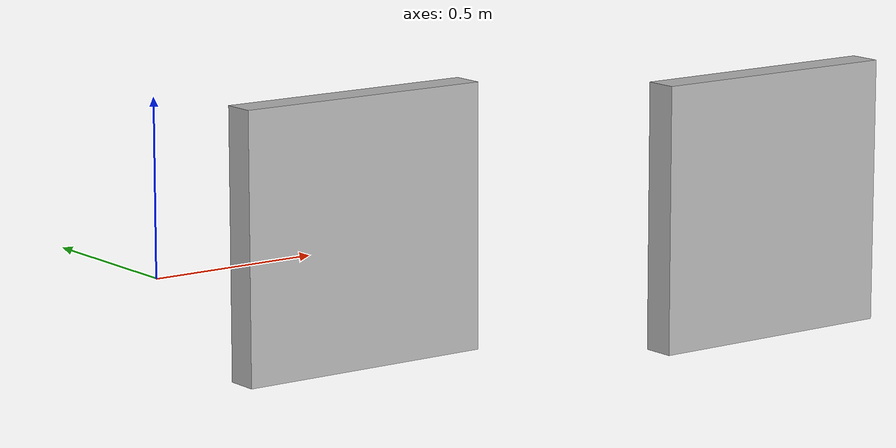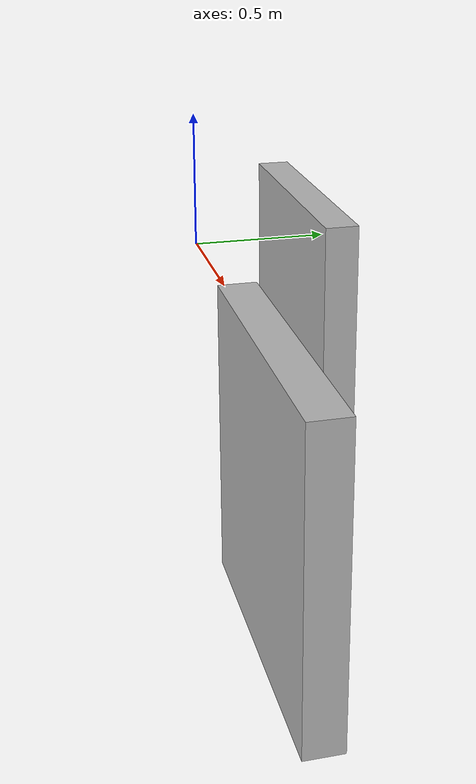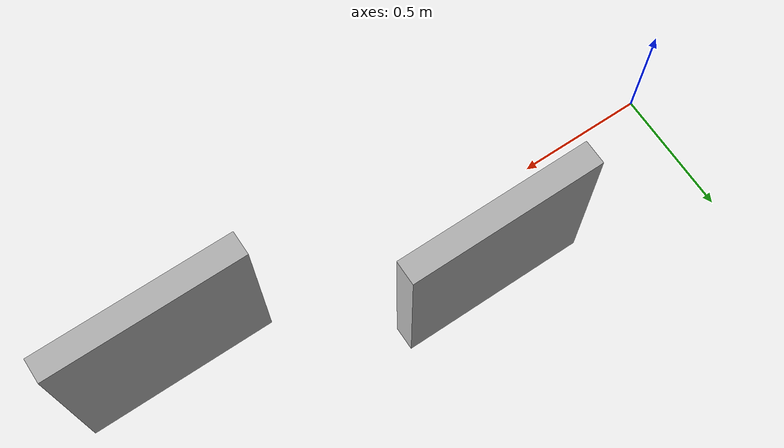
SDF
<?xml version='1.0'?>
<sdf version='1.5'>

  <model name='torpedo_targets'>
    <pose>0 0 0 0 0 0</pose>
    <self_collide> 0 </self_collide>
    <static> 1</static>

    <link name='target_gman'>
      <pose>0.8 0.2 0 0 0 0</pose>
      <visual name='target_1'>
        <geometry>
          <box><size>0.8 0.1 0.8</size></box>
        </geometry>
        <material>
            <script>
            <uri>model://2018/torpedo_targets/materials/scripts</uri>
            <uri>model://2018/torpedo_targets/materials/textures</uri>
            <name>TexturedShape/gman</name>
          </script>
        </material>
      </visual>
      <collision name='target_1_collide'>
        <geometry>
          <box><size>0.8 0.1 0.8</size></box>
        </geometry>
      </collision>
    </link>

    <link name='target_bootlegger'>
      <pose>2 -0.2 0 0 0 0</pose>
      <visual name='target_1'>
        <geometry>
          <box><size>0.8 0.1 0.8</size></box>
        </geometry>
        <material>
            <script>
            <uri>model://2018/torpedo_targets/materials/scripts</uri>
            <uri>model://2018/torpedo_targets/materials/textures</uri>
            <name>TexturedShape/bootlegger</name>
          </script>
        </material>
      </visual>
      <collision name='target_1_collide'>
        <geometry>
          <box><size>0.8 0.1 0.8</size></box>
        </geometry>
      </collision>
    </link>
  </model>
</sdf>
